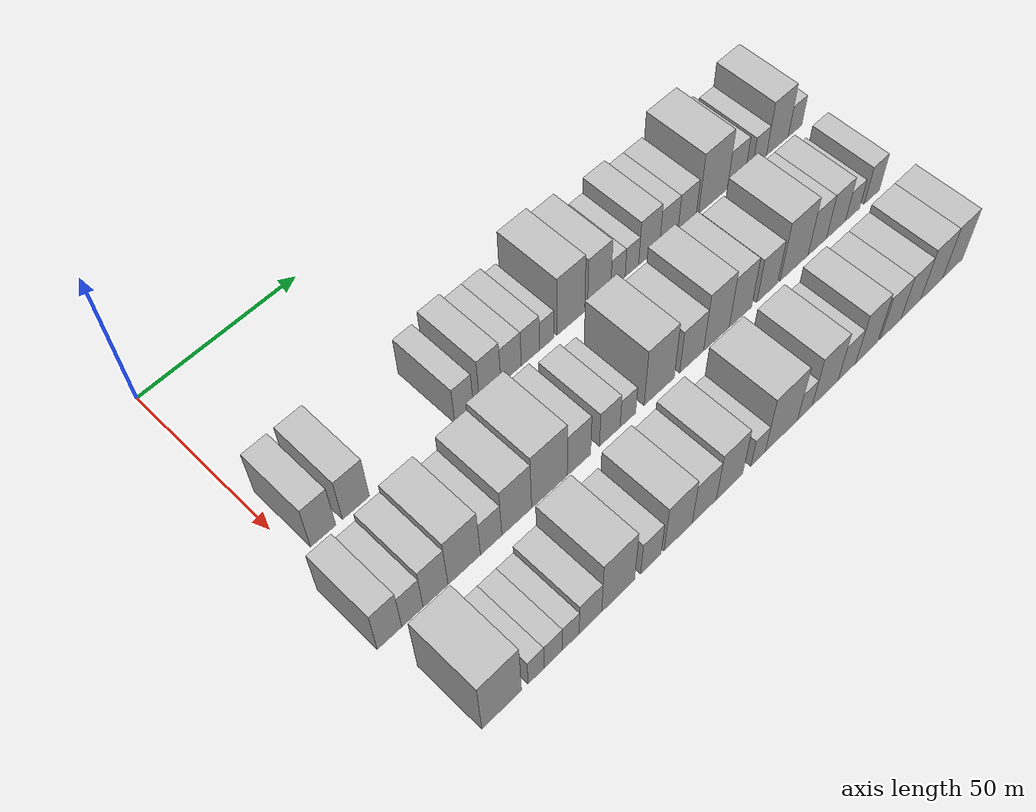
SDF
<sdf version="1.6">
 <world name="default">
  <model name="building_40">
   <static>1</static>
   <pose>50.0000 7.4504 0 0.000000 0.000000 0.000000</pose>
   <link name="link">
    <pose>0 0 9.00 0 0 0</pose>
    <collision name="collision"><geometry><box><size>20.0000 7.5672 18.0000</size></box></geometry></collision>
    <visual name="visual">
     <cast_shadows>0</cast_shadows>
     <geometry><box><size>20.0000 7.5672 18.0000</size></box></geometry>
     <material>
      <script>
       <uri>model://HANNAS_wall/materials/scripts</uri>
       <uri>model://HANNAS_wall/materials/textures</uri>
       <name>vrc/HANNAS_wall</name>
      </script>
     </material>
    </visual>
   </link>
  </model>
  <model name="building_41">
   <static>1</static>
   <pose>50.0000 17.3543 0 0.000000 0.000000 0.000000</pose>
   <link name="link">
    <pose>0 0 9.00 0 0 0</pose>
    <collision name="collision"><geometry><box><size>20.0000 8.2406 18.0000</size></box></geometry></collision>
    <visual name="visual">
     <cast_shadows>0</cast_shadows>
     <geometry><box><size>20.0000 8.2406 18.0000</size></box></geometry>
     <material>
      <script>
       <uri>model://HANNAS_wall/materials/scripts</uri>
       <uri>model://HANNAS_wall/materials/textures</uri>
       <name>vrc/HANNAS_wall</name>
      </script>
     </material>
    </visual>
   </link>
  </model>
  <model name="building_42">
   <static>1</static>
   <pose>50.0000 51.7338 0 0.000000 0.000000 0.000000</pose>
   <link name="link">
    <pose>0 0 7.50 0 0 0</pose>
    <collision name="collision"><geometry><box><size>20.0000 6.1729 15.0000</size></box></geometry></collision>
    <visual name="visual">
     <cast_shadows>0</cast_shadows>
     <geometry><box><size>20.0000 6.1729 15.0000</size></box></geometry>
     <material>
      <script>
       <uri>model://HANNAS_wall/materials/scripts</uri>
       <uri>model://HANNAS_wall/materials/textures</uri>
       <name>vrc/HANNAS_wall</name>
      </script>
     </material>
    </visual>
   </link>
  </model>
  <model name="building_43">
   <static>1</static>
   <pose>50.0000 60.4232 0 0.000000 0.000000 0.000000</pose>
   <link name="link">
    <pose>0 0 9.00 0 0 0</pose>
    <collision name="collision"><geometry><box><size>20.0000 7.2059 18.0000</size></box></geometry></collision>
    <visual name="visual">
     <cast_shadows>0</cast_shadows>
     <geometry><box><size>20.0000 7.2059 18.0000</size></box></geometry>
     <material>
      <script>
       <uri>model://HANNAS_wall/materials/scripts</uri>
       <uri>model://HANNAS_wall/materials/textures</uri>
       <name>vrc/HANNAS_wall</name>
      </script>
     </material>
    </visual>
   </link>
  </model>
  <model name="building_44">
   <static>1</static>
   <pose>50.0000 67.5245 0 0.000000 0.000000 0.000000</pose>
   <link name="link">
    <pose>0 0 7.50 0 0 0</pose>
    <collision name="collision"><geometry><box><size>20.0000 6.9966 15.0000</size></box></geometry></collision>
    <visual name="visual">
     <cast_shadows>0</cast_shadows>
     <geometry><box><size>20.0000 6.9966 15.0000</size></box></geometry>
     <material>
      <script>
       <uri>model://HANNAS_wall/materials/scripts</uri>
       <uri>model://HANNAS_wall/materials/textures</uri>
       <name>vrc/HANNAS_wall</name>
      </script>
     </material>
    </visual>
   </link>
  </model>
  <model name="building_45">
   <static>1</static>
   <pose>50.0000 74.1940 0 0.000000 0.000000 0.000000</pose>
   <link name="link">
    <pose>0 0 7.50 0 0 0</pose>
    <collision name="collision"><geometry><box><size>20.0000 6.3425 15.0000</size></box></geometry></collision>
    <visual name="visual">
     <cast_shadows>0</cast_shadows>
     <geometry><box><size>20.0000 6.3425 15.0000</size></box></geometry>
     <material>
      <script>
       <uri>model://HANNAS_wall/materials/scripts</uri>
       <uri>model://HANNAS_wall/materials/textures</uri>
       <name>vrc/HANNAS_wall</name>
      </script>
     </material>
    </visual>
   </link>
  </model>
  <model name="building_46">
   <static>1</static>
   <pose>50.0000 79.9017 0 0.000000 0.000000 0.000000</pose>
   <link name="link">
    <pose>0 0 6.00 0 0 0</pose>
    <collision name="collision"><geometry><box><size>20.0000 5.0729 12.0000</size></box></geometry></collision>
    <visual name="visual">
     <cast_shadows>0</cast_shadows>
     <geometry><box><size>20.0000 5.0729 12.0000</size></box></geometry>
     <material>
      <script>
       <uri>model://HANNAS_wall/materials/scripts</uri>
       <uri>model://HANNAS_wall/materials/textures</uri>
       <name>vrc/HANNAS_wall</name>
      </script>
     </material>
    </visual>
   </link>
  </model>
  <model name="building_47">
   <static>1</static>
   <pose>50.0000 88.3860 0 0.000000 0.000000 0.000000</pose>
   <link name="link">
    <pose>0 0 12.00 0 0 0</pose>
    <collision name="collision"><geometry><box><size>20.0000 9.8957 24.0000</size></box></geometry></collision>
    <visual name="visual">
     <cast_shadows>0</cast_shadows>
     <geometry><box><size>20.0000 9.8957 24.0000</size></box></geometry>
     <material>
      <script>
       <uri>model://HANNAS_wall/materials/scripts</uri>
       <uri>model://HANNAS_wall/materials/textures</uri>
       <name>vrc/HANNAS_wall</name>
      </script>
     </material>
    </visual>
   </link>
  </model>
  <model name="building_48">
   <static>1</static>
   <pose>50.0000 98.5657 0 0.000000 0.000000 0.000000</pose>
   <link name="link">
    <pose>0 0 10.50 0 0 0</pose>
    <collision name="collision"><geometry><box><size>20.0000 8.4638 21.0000</size></box></geometry></collision>
    <visual name="visual">
     <cast_shadows>0</cast_shadows>
     <geometry><box><size>20.0000 8.4638 21.0000</size></box></geometry>
     <material>
      <script>
       <uri>model://HANNAS_wall/materials/scripts</uri>
       <uri>model://HANNAS_wall/materials/textures</uri>
       <name>vrc/HANNAS_wall</name>
      </script>
     </material>
    </visual>
   </link>
  </model>
  <model name="building_49">
   <static>1</static>
   <pose>50.0000 105.4845 0 0.000000 0.000000 0.000000</pose>
   <link name="link">
    <pose>0 0 6.00 0 0 0</pose>
    <collision name="collision"><geometry><box><size>20.0000 5.3737 12.0000</size></box></geometry></collision>
    <visual name="visual">
     <cast_shadows>0</cast_shadows>
     <geometry><box><size>20.0000 5.3737 12.0000</size></box></geometry>
     <material>
      <script>
       <uri>model://HANNAS_wall/materials/scripts</uri>
       <uri>model://HANNAS_wall/materials/textures</uri>
       <name>vrc/HANNAS_wall</name>
      </script>
     </material>
    </visual>
   </link>
  </model>
  <model name="building_50">
   <static>1</static>
   <pose>50.0000 110.6867 0 0.000000 0.000000 0.000000</pose>
   <link name="link">
    <pose>0 0 6.00 0 0 0</pose>
    <collision name="collision"><geometry><box><size>20.0000 5.0306 12.0000</size></box></geometry></collision>
    <visual name="visual">
     <cast_shadows>0</cast_shadows>
     <geometry><box><size>20.0000 5.0306 12.0000</size></box></geometry>
     <material>
      <script>
       <uri>model://HANNAS_wall/materials/scripts</uri>
       <uri>model://HANNAS_wall/materials/textures</uri>
       <name>vrc/HANNAS_wall</name>
      </script>
     </material>
    </visual>
   </link>
  </model>
  <model name="building_51">
   <static>1</static>
   <pose>50.0000 117.1437 0 0.000000 0.000000 0.000000</pose>
   <link name="link">
    <pose>0 0 9.00 0 0 0</pose>
    <collision name="collision"><geometry><box><size>20.0000 7.8833 18.0000</size></box></geometry></collision>
    <visual name="visual">
     <cast_shadows>0</cast_shadows>
     <geometry><box><size>20.0000 7.8833 18.0000</size></box></geometry>
     <material>
      <script>
       <uri>model://HANNAS_wall/materials/scripts</uri>
       <uri>model://HANNAS_wall/materials/textures</uri>
       <name>vrc/HANNAS_wall</name>
      </script>
     </material>
    </visual>
   </link>
  </model>
  <model name="building_52">
   <static>1</static>
   <pose>50.0000 124.6534 0 0.000000 0.000000 0.000000</pose>
   <link name="link">
    <pose>0 0 7.50 0 0 0</pose>
    <collision name="collision"><geometry><box><size>20.0000 7.1361 15.0000</size></box></geometry></collision>
    <visual name="visual">
     <cast_shadows>0</cast_shadows>
     <geometry><box><size>20.0000 7.1361 15.0000</size></box></geometry>
     <material>
      <script>
       <uri>model://HANNAS_wall/materials/scripts</uri>
       <uri>model://HANNAS_wall/materials/textures</uri>
       <name>vrc/HANNAS_wall</name>
      </script>
     </material>
    </visual>
   </link>
  </model>
  <model name="building_53">
   <static>1</static>
   <pose>50.0000 131.7565 0 0.000000 0.000000 0.000000</pose>
   <link name="link">
    <pose>0 0 7.50 0 0 0</pose>
    <collision name="collision"><geometry><box><size>20.0000 7.0702 15.0000</size></box></geometry></collision>
    <visual name="visual">
     <cast_shadows>0</cast_shadows>
     <geometry><box><size>20.0000 7.0702 15.0000</size></box></geometry>
     <material>
      <script>
       <uri>model://HANNAS_wall/materials/scripts</uri>
       <uri>model://HANNAS_wall/materials/textures</uri>
       <name>vrc/HANNAS_wall</name>
      </script>
     </material>
    </visual>
   </link>
  </model>
  <model name="building_54">
   <static>1</static>
   <pose>50.0000 142.0020 0 0.000000 0.000000 0.000000</pose>
   <link name="link">
    <pose>0 0 12.00 0 0 0</pose>
    <collision name="collision"><geometry><box><size>20.0000 11.4209 24.0000</size></box></geometry></collision>
    <visual name="visual">
     <cast_shadows>0</cast_shadows>
     <geometry><box><size>20.0000 11.4209 24.0000</size></box></geometry>
     <material>
      <script>
       <uri>model://HANNAS_wall/materials/scripts</uri>
       <uri>model://HANNAS_wall/materials/textures</uri>
       <name>vrc/HANNAS_wall</name>
      </script>
     </material>
    </visual>
   </link>
  </model>
  <model name="building_55">
   <static>1</static>
   <pose>50.0000 151.3492 0 0.000000 0.000000 0.000000</pose>
   <link name="link">
    <pose>0 0 7.50 0 0 0</pose>
    <collision name="collision"><geometry><box><size>20.0000 7.2735 15.0000</size></box></geometry></collision>
    <visual name="visual">
     <cast_shadows>0</cast_shadows>
     <geometry><box><size>20.0000 7.2735 15.0000</size></box></geometry>
     <material>
      <script>
       <uri>model://HANNAS_wall/materials/scripts</uri>
       <uri>model://HANNAS_wall/materials/textures</uri>
       <name>vrc/HANNAS_wall</name>
      </script>
     </material>
    </visual>
   </link>
  </model>
  <model name="building_56">
   <static>1</static>
   <pose>50.0000 160.8515 0 0.000000 0.000000 0.000000</pose>
   <link name="link">
    <pose>0 0 6.00 0 0 0</pose>
    <collision name="collision"><geometry><box><size>20.0000 5.7311 12.0000</size></box></geometry></collision>
    <visual name="visual">
     <cast_shadows>0</cast_shadows>
     <geometry><box><size>20.0000 5.7311 12.0000</size></box></geometry>
     <material>
      <script>
       <uri>model://HANNAS_wall/materials/scripts</uri>
       <uri>model://HANNAS_wall/materials/textures</uri>
       <name>vrc/HANNAS_wall</name>
      </script>
     </material>
    </visual>
   </link>
  </model>
  <model name="building_57">
   <static>1</static>
   <pose>50.0000 168.3172 0 0.000000 0.000000 0.000000</pose>
   <link name="link">
    <pose>0 0 10.50 0 0 0</pose>
    <collision name="collision"><geometry><box><size>20.0000 9.2005 21.0000</size></box></geometry></collision>
    <visual name="visual">
     <cast_shadows>0</cast_shadows>
     <geometry><box><size>20.0000 9.2005 21.0000</size></box></geometry>
     <material>
      <script>
       <uri>model://HANNAS_wall/materials/scripts</uri>
       <uri>model://HANNAS_wall/materials/textures</uri>
       <name>vrc/HANNAS_wall</name>
      </script>
     </material>
    </visual>
   </link>
  </model>
  <model name="building_58">
   <static>1</static>
   <pose>50.0000 175.8092 0 0.000000 0.000000 0.000000</pose>
   <link name="link">
    <pose>0 0 6.00 0 0 0</pose>
    <collision name="collision"><geometry><box><size>20.0000 5.7834 12.0000</size></box></geometry></collision>
    <visual name="visual">
     <cast_shadows>0</cast_shadows>
     <geometry><box><size>20.0000 5.7834 12.0000</size></box></geometry>
     <material>
      <script>
       <uri>model://HANNAS_wall/materials/scripts</uri>
       <uri>model://HANNAS_wall/materials/textures</uri>
       <name>vrc/HANNAS_wall</name>
      </script>
     </material>
    </visual>
   </link>
  </model>
  <model name="building_115">
   <static>1</static>
   <pose>79.0000 1.4939 0 0.000000 0.000000 0.000000</pose>
   <link name="link">
    <pose>0 0 9.00 0 0 0</pose>
    <collision name="collision"><geometry><box><size>20.0000 7.2247 18.0000</size></box></geometry></collision>
    <visual name="visual">
     <cast_shadows>0</cast_shadows>
     <geometry><box><size>20.0000 7.2247 18.0000</size></box></geometry>
     <material>
      <script>
       <uri>model://HANNAS_wall/materials/scripts</uri>
       <uri>model://HANNAS_wall/materials/textures</uri>
       <name>vrc/HANNAS_wall</name>
      </script>
     </material>
    </visual>
   </link>
  </model>
  <model name="building_116">
   <static>1</static>
   <pose>79.0000 8.2973 0 0.000000 0.000000 0.000000</pose>
   <link name="link">
    <pose>0 0 7.50 0 0 0</pose>
    <collision name="collision"><geometry><box><size>20.0000 6.3820 15.0000</size></box></geometry></collision>
    <visual name="visual">
     <cast_shadows>0</cast_shadows>
     <geometry><box><size>20.0000 6.3820 15.0000</size></box></geometry>
     <material>
      <script>
       <uri>model://HANNAS_wall/materials/scripts</uri>
       <uri>model://HANNAS_wall/materials/textures</uri>
       <name>vrc/HANNAS_wall</name>
      </script>
     </material>
    </visual>
   </link>
  </model>
  <model name="building_117">
   <static>1</static>
   <pose>79.0000 15.2672 0 0.000000 0.000000 0.000000</pose>
   <link name="link">
    <pose>0 0 9.00 0 0 0</pose>
    <collision name="collision"><geometry><box><size>20.0000 7.5578 18.0000</size></box></geometry></collision>
    <visual name="visual">
     <cast_shadows>0</cast_shadows>
     <geometry><box><size>20.0000 7.5578 18.0000</size></box></geometry>
     <material>
      <script>
       <uri>model://HANNAS_wall/materials/scripts</uri>
       <uri>model://HANNAS_wall/materials/textures</uri>
       <name>vrc/HANNAS_wall</name>
      </script>
     </material>
    </visual>
   </link>
  </model>
  <model name="building_118">
   <static>1</static>
   <pose>79.0000 24.0853 0 0.000000 0.000000 0.000000</pose>
   <link name="link">
    <pose>0 0 10.50 0 0 0</pose>
    <collision name="collision"><geometry><box><size>20.0000 10.0784 21.0000</size></box></geometry></collision>
    <visual name="visual">
     <cast_shadows>0</cast_shadows>
     <geometry><box><size>20.0000 10.0784 21.0000</size></box></geometry>
     <material>
      <script>
       <uri>model://HANNAS_wall/materials/scripts</uri>
       <uri>model://HANNAS_wall/materials/textures</uri>
       <name>vrc/HANNAS_wall</name>
      </script>
     </material>
    </visual>
   </link>
  </model>
  <model name="building_119">
   <static>1</static>
   <pose>79.0000 32.4928 0 0.000000 0.000000 0.000000</pose>
   <link name="link">
    <pose>0 0 7.50 0 0 0</pose>
    <collision name="collision"><geometry><box><size>20.0000 6.7366 15.0000</size></box></geometry></collision>
    <visual name="visual">
     <cast_shadows>0</cast_shadows>
     <geometry><box><size>20.0000 6.7366 15.0000</size></box></geometry>
     <material>
      <script>
       <uri>model://HANNAS_wall/materials/scripts</uri>
       <uri>model://HANNAS_wall/materials/textures</uri>
       <name>vrc/HANNAS_wall</name>
      </script>
     </material>
    </visual>
   </link>
  </model>
  <model name="building_120">
   <static>1</static>
   <pose>79.0000 40.6600 0 0.000000 0.000000 0.000000</pose>
   <link name="link">
    <pose>0 0 10.50 0 0 0</pose>
    <collision name="collision"><geometry><box><size>20.0000 9.5979 21.0000</size></box></geometry></collision>
    <visual name="visual">
     <cast_shadows>0</cast_shadows>
     <geometry><box><size>20.0000 9.5979 21.0000</size></box></geometry>
     <material>
      <script>
       <uri>model://HANNAS_wall/materials/scripts</uri>
       <uri>model://HANNAS_wall/materials/textures</uri>
       <name>vrc/HANNAS_wall</name>
      </script>
     </material>
    </visual>
   </link>
  </model>
  <model name="building_121">
   <static>1</static>
   <pose>79.0000 51.3316 0 0.000000 0.000000 0.000000</pose>
   <link name="link">
    <pose>0 0 12.00 0 0 0</pose>
    <collision name="collision"><geometry><box><size>20.0000 11.7453 24.0000</size></box></geometry></collision>
    <visual name="visual">
     <cast_shadows>0</cast_shadows>
     <geometry><box><size>20.0000 11.7453 24.0000</size></box></geometry>
     <material>
      <script>
       <uri>model://HANNAS_wall/materials/scripts</uri>
       <uri>model://HANNAS_wall/materials/textures</uri>
       <name>vrc/HANNAS_wall</name>
      </script>
     </material>
    </visual>
   </link>
  </model>
  <model name="building_122">
   <static>1</static>
   <pose>79.0000 61.1609 0 0.000000 0.000000 0.000000</pose>
   <link name="link">
    <pose>0 0 9.00 0 0 0</pose>
    <collision name="collision"><geometry><box><size>20.0000 7.9132 18.0000</size></box></geometry></collision>
    <visual name="visual">
     <cast_shadows>0</cast_shadows>
     <geometry><box><size>20.0000 7.9132 18.0000</size></box></geometry>
     <material>
      <script>
       <uri>model://HANNAS_wall/materials/scripts</uri>
       <uri>model://HANNAS_wall/materials/textures</uri>
       <name>vrc/HANNAS_wall</name>
      </script>
     </material>
    </visual>
   </link>
  </model>
  <model name="building_123">
   <static>1</static>
   <pose>79.0000 71.6777 0 0.000000 0.000000 0.000000</pose>
   <link name="link">
    <pose>0 0 7.50 0 0 0</pose>
    <collision name="collision"><geometry><box><size>20.0000 7.1204 15.0000</size></box></geometry></collision>
    <visual name="visual">
     <cast_shadows>0</cast_shadows>
     <geometry><box><size>20.0000 7.1204 15.0000</size></box></geometry>
     <material>
      <script>
       <uri>model://HANNAS_wall/materials/scripts</uri>
       <uri>model://HANNAS_wall/materials/textures</uri>
       <name>vrc/HANNAS_wall</name>
      </script>
     </material>
    </visual>
   </link>
  </model>
  <model name="building_124">
   <static>1</static>
   <pose>79.0000 77.9677 0 0.000000 0.000000 0.000000</pose>
   <link name="link">
    <pose>0 0 6.00 0 0 0</pose>
    <collision name="collision"><geometry><box><size>20.0000 5.4597 12.0000</size></box></geometry></collision>
    <visual name="visual">
     <cast_shadows>0</cast_shadows>
     <geometry><box><size>20.0000 5.4597 12.0000</size></box></geometry>
     <material>
      <script>
       <uri>model://HANNAS_wall/materials/scripts</uri>
       <uri>model://HANNAS_wall/materials/textures</uri>
       <name>vrc/HANNAS_wall</name>
      </script>
     </material>
    </visual>
   </link>
  </model>
  <model name="building_125">
   <static>1</static>
   <pose>79.0000 89.0785 0 0.000000 0.000000 0.000000</pose>
   <link name="link">
    <pose>0 0 12.00 0 0 0</pose>
    <collision name="collision"><geometry><box><size>20.0000 10.7621 24.0000</size></box></geometry></collision>
    <visual name="visual">
     <cast_shadows>0</cast_shadows>
     <geometry><box><size>20.0000 10.7621 24.0000</size></box></geometry>
     <material>
      <script>
       <uri>model://HANNAS_wall/materials/scripts</uri>
       <uri>model://HANNAS_wall/materials/textures</uri>
       <name>vrc/HANNAS_wall</name>
      </script>
     </material>
    </visual>
   </link>
  </model>
  <model name="building_126">
   <static>1</static>
   <pose>79.0000 100.8527 0 0.000000 0.000000 0.000000</pose>
   <link name="link">
    <pose>0 0 9.00 0 0 0</pose>
    <collision name="collision"><geometry><box><size>20.0000 8.7864 18.0000</size></box></geometry></collision>
    <visual name="visual">
     <cast_shadows>0</cast_shadows>
     <geometry><box><size>20.0000 8.7864 18.0000</size></box></geometry>
     <material>
      <script>
       <uri>model://HANNAS_wall/materials/scripts</uri>
       <uri>model://HANNAS_wall/materials/textures</uri>
       <name>vrc/HANNAS_wall</name>
      </script>
     </material>
    </visual>
   </link>
  </model>
  <model name="building_127">
   <static>1</static>
   <pose>79.0000 110.0501 0 0.000000 0.000000 0.000000</pose>
   <link name="link">
    <pose>0 0 12.00 0 0 0</pose>
    <collision name="collision"><geometry><box><size>20.0000 9.6083 24.0000</size></box></geometry></collision>
    <visual name="visual">
     <cast_shadows>0</cast_shadows>
     <geometry><box><size>20.0000 9.6083 24.0000</size></box></geometry>
     <material>
      <script>
       <uri>model://HANNAS_wall/materials/scripts</uri>
       <uri>model://HANNAS_wall/materials/textures</uri>
       <name>vrc/HANNAS_wall</name>
      </script>
     </material>
    </visual>
   </link>
  </model>
  <model name="building_128">
   <static>1</static>
   <pose>79.0000 119.1418 0 0.000000 0.000000 0.000000</pose>
   <link name="link">
    <pose>0 0 10.50 0 0 0</pose>
    <collision name="collision"><geometry><box><size>20.0000 8.5752 21.0000</size></box></geometry></collision>
    <visual name="visual">
     <cast_shadows>0</cast_shadows>
     <geometry><box><size>20.0000 8.5752 21.0000</size></box></geometry>
     <material>
      <script>
       <uri>model://HANNAS_wall/materials/scripts</uri>
       <uri>model://HANNAS_wall/materials/textures</uri>
       <name>vrc/HANNAS_wall</name>
      </script>
     </material>
    </visual>
   </link>
  </model>
  <model name="building_129">
   <static>1</static>
   <pose>79.0000 129.4755 0 0.000000 0.000000 0.000000</pose>
   <link name="link">
    <pose>0 0 9.00 0 0 0</pose>
    <collision name="collision"><geometry><box><size>20.0000 8.0923 18.0000</size></box></geometry></collision>
    <visual name="visual">
     <cast_shadows>0</cast_shadows>
     <geometry><box><size>20.0000 8.0923 18.0000</size></box></geometry>
     <material>
      <script>
       <uri>model://HANNAS_wall/materials/scripts</uri>
       <uri>model://HANNAS_wall/materials/textures</uri>
       <name>vrc/HANNAS_wall</name>
      </script>
     </material>
    </visual>
   </link>
  </model>
  <model name="building_130">
   <static>1</static>
   <pose>79.0000 140.1061 0 0.000000 0.000000 0.000000</pose>
   <link name="link">
    <pose>0 0 12.00 0 0 0</pose>
    <collision name="collision"><geometry><box><size>20.0000 11.1688 24.0000</size></box></geometry></collision>
    <visual name="visual">
     <cast_shadows>0</cast_shadows>
     <geometry><box><size>20.0000 11.1688 24.0000</size></box></geometry>
     <material>
      <script>
       <uri>model://HANNAS_wall/materials/scripts</uri>
       <uri>model://HANNAS_wall/materials/textures</uri>
       <name>vrc/HANNAS_wall</name>
      </script>
     </material>
    </visual>
   </link>
  </model>
  <model name="building_131">
   <static>1</static>
   <pose>79.0000 149.4155 0 0.000000 0.000000 0.000000</pose>
   <link name="link">
    <pose>0 0 9.00 0 0 0</pose>
    <collision name="collision"><geometry><box><size>20.0000 7.4500 18.0000</size></box></geometry></collision>
    <visual name="visual">
     <cast_shadows>0</cast_shadows>
     <geometry><box><size>20.0000 7.4500 18.0000</size></box></geometry>
     <material>
      <script>
       <uri>model://HANNAS_wall/materials/scripts</uri>
       <uri>model://HANNAS_wall/materials/textures</uri>
       <name>vrc/HANNAS_wall</name>
      </script>
     </material>
    </visual>
   </link>
  </model>
  <model name="building_132">
   <static>1</static>
   <pose>79.0000 157.1162 0 0.000000 0.000000 0.000000</pose>
   <link name="link">
    <pose>0 0 9.00 0 0 0</pose>
    <collision name="collision"><geometry><box><size>20.0000 7.9513 18.0000</size></box></geometry></collision>
    <visual name="visual">
     <cast_shadows>0</cast_shadows>
     <geometry><box><size>20.0000 7.9513 18.0000</size></box></geometry>
     <material>
      <script>
       <uri>model://HANNAS_wall/materials/scripts</uri>
       <uri>model://HANNAS_wall/materials/textures</uri>
       <name>vrc/HANNAS_wall</name>
      </script>
     </material>
    </visual>
   </link>
  </model>
  <model name="building_133">
   <static>1</static>
   <pose>79.0000 164.0269 0 0.000000 0.000000 0.000000</pose>
   <link name="link">
    <pose>0 0 6.00 0 0 0</pose>
    <collision name="collision"><geometry><box><size>20.0000 5.8700 12.0000</size></box></geometry></collision>
    <visual name="visual">
     <cast_shadows>0</cast_shadows>
     <geometry><box><size>20.0000 5.8700 12.0000</size></box></geometry>
     <material>
      <script>
       <uri>model://HANNAS_wall/materials/scripts</uri>
       <uri>model://HANNAS_wall/materials/textures</uri>
       <name>vrc/HANNAS_wall</name>
      </script>
     </material>
    </visual>
   </link>
  </model>
  <model name="building_134">
   <static>1</static>
   <pose>79.0000 172.1776 0 0.000000 0.000000 0.000000</pose>
   <link name="link">
    <pose>0 0 7.50 0 0 0</pose>
    <collision name="collision"><geometry><box><size>20.0000 6.4314 15.0000</size></box></geometry></collision>
    <visual name="visual">
     <cast_shadows>0</cast_shadows>
     <geometry><box><size>20.0000 6.4314 15.0000</size></box></geometry>
     <material>
      <script>
       <uri>model://HANNAS_wall/materials/scripts</uri>
       <uri>model://HANNAS_wall/materials/textures</uri>
       <name>vrc/HANNAS_wall</name>
      </script>
     </material>
    </visual>
   </link>
  </model>
  <model name="building_195">
   <static>1</static>
   <pose>108.0000 7.3734 0 0.000000 0.000000 0.000000</pose>
   <link name="link">
    <pose>0 0 12.00 0 0 0</pose>
    <collision name="collision"><geometry><box><size>20.0000 11.8275 24.0000</size></box></geometry></collision>
    <visual name="visual">
     <cast_shadows>0</cast_shadows>
     <geometry><box><size>20.0000 11.8275 24.0000</size></box></geometry>
     <material>
      <script>
       <uri>model://HANNAS_wall/materials/scripts</uri>
       <uri>model://HANNAS_wall/materials/textures</uri>
       <name>vrc/HANNAS_wall</name>
      </script>
     </material>
    </visual>
   </link>
  </model>
  <model name="building_196">
   <static>1</static>
   <pose>108.0000 17.7530 0 0.000000 0.000000 0.000000</pose>
   <link name="link">
    <pose>0 0 6.00 0 0 0</pose>
    <collision name="collision"><geometry><box><size>20.0000 4.9316 12.0000</size></box></geometry></collision>
    <visual name="visual">
     <cast_shadows>0</cast_shadows>
     <geometry><box><size>20.0000 4.9316 12.0000</size></box></geometry>
     <material>
      <script>
       <uri>model://HANNAS_wall/materials/scripts</uri>
       <uri>model://HANNAS_wall/materials/textures</uri>
       <name>vrc/HANNAS_wall</name>
      </script>
     </material>
    </visual>
   </link>
  </model>
  <model name="building_197">
   <static>1</static>
   <pose>108.0000 23.0538 0 0.000000 0.000000 0.000000</pose>
   <link name="link">
    <pose>0 0 6.00 0 0 0</pose>
    <collision name="collision"><geometry><box><size>20.0000 5.6701 12.0000</size></box></geometry></collision>
    <visual name="visual">
     <cast_shadows>0</cast_shadows>
     <geometry><box><size>20.0000 5.6701 12.0000</size></box></geometry>
     <material>
      <script>
       <uri>model://HANNAS_wall/materials/scripts</uri>
       <uri>model://HANNAS_wall/materials/textures</uri>
       <name>vrc/HANNAS_wall</name>
      </script>
     </material>
    </visual>
   </link>
  </model>
  <model name="building_198">
   <static>1</static>
   <pose>108.0000 28.4826 0 0.000000 0.000000 0.000000</pose>
   <link name="link">
    <pose>0 0 6.00 0 0 0</pose>
    <collision name="collision"><geometry><box><size>20.0000 5.1874 12.0000</size></box></geometry></collision>
    <visual name="visual">
     <cast_shadows>0</cast_shadows>
     <geometry><box><size>20.0000 5.1874 12.0000</size></box></geometry>
     <material>
      <script>
       <uri>model://HANNAS_wall/materials/scripts</uri>
       <uri>model://HANNAS_wall/materials/textures</uri>
       <name>vrc/HANNAS_wall</name>
      </script>
     </material>
    </visual>
   </link>
  </model>
  <model name="building_199">
   <static>1</static>
   <pose>108.0000 34.6483 0 0.000000 0.000000 0.000000</pose>
   <link name="link">
    <pose>0 0 7.50 0 0 0</pose>
    <collision name="collision"><geometry><box><size>20.0000 7.1440 15.0000</size></box></geometry></collision>
    <visual name="visual">
     <cast_shadows>0</cast_shadows>
     <geometry><box><size>20.0000 7.1440 15.0000</size></box></geometry>
     <material>
      <script>
       <uri>model://HANNAS_wall/materials/scripts</uri>
       <uri>model://HANNAS_wall/materials/textures</uri>
       <name>vrc/HANNAS_wall</name>
      </script>
     </material>
    </visual>
   </link>
  </model>
  <model name="building_200">
   <static>1</static>
   <pose>108.0000 43.5733 0 0.000000 0.000000 0.000000</pose>
   <link name="link">
    <pose>0 0 12.00 0 0 0</pose>
    <collision name="collision"><geometry><box><size>20.0000 10.7059 24.0000</size></box></geometry></collision>
    <visual name="visual">
     <cast_shadows>0</cast_shadows>
     <geometry><box><size>20.0000 10.7059 24.0000</size></box></geometry>
     <material>
      <script>
       <uri>model://HANNAS_wall/materials/scripts</uri>
       <uri>model://HANNAS_wall/materials/textures</uri>
       <name>vrc/HANNAS_wall</name>
      </script>
     </material>
    </visual>
   </link>
  </model>
  <model name="building_201">
   <static>1</static>
   <pose>108.0000 54.3320 0 0.000000 0.000000 0.000000</pose>
   <link name="link">
    <pose>0 0 7.50 0 0 0</pose>
    <collision name="collision"><geometry><box><size>20.0000 6.8115 15.0000</size></box></geometry></collision>
    <visual name="visual">
     <cast_shadows>0</cast_shadows>
     <geometry><box><size>20.0000 6.8115 15.0000</size></box></geometry>
     <material>
      <script>
       <uri>model://HANNAS_wall/materials/scripts</uri>
       <uri>model://HANNAS_wall/materials/textures</uri>
       <name>vrc/HANNAS_wall</name>
      </script>
     </material>
    </visual>
   </link>
  </model>
  <model name="building_202">
   <static>1</static>
   <pose>108.0000 63.5224 0 0.000000 0.000000 0.000000</pose>
   <link name="link">
    <pose>0 0 10.50 0 0 0</pose>
    <collision name="collision"><geometry><box><size>20.0000 9.5694 21.0000</size></box></geometry></collision>
    <visual name="visual">
     <cast_shadows>0</cast_shadows>
     <geometry><box><size>20.0000 9.5694 21.0000</size></box></geometry>
     <material>
      <script>
       <uri>model://HANNAS_wall/materials/scripts</uri>
       <uri>model://HANNAS_wall/materials/textures</uri>
       <name>vrc/HANNAS_wall</name>
      </script>
     </material>
    </visual>
   </link>
  </model>
  <model name="building_203">
   <static>1</static>
   <pose>108.0000 72.4843 0 0.000000 0.000000 0.000000</pose>
   <link name="link">
    <pose>0 0 9.00 0 0 0</pose>
    <collision name="collision"><geometry><box><size>20.0000 8.3544 18.0000</size></box></geometry></collision>
    <visual name="visual">
     <cast_shadows>0</cast_shadows>
     <geometry><box><size>20.0000 8.3544 18.0000</size></box></geometry>
     <material>
      <script>
       <uri>model://HANNAS_wall/materials/scripts</uri>
       <uri>model://HANNAS_wall/materials/textures</uri>
       <name>vrc/HANNAS_wall</name>
      </script>
     </material>
    </visual>
   </link>
  </model>
  <model name="building_204">
   <static>1</static>
   <pose>108.0000 81.3296 0 0.000000 0.000000 0.000000</pose>
   <link name="link">
    <pose>0 0 10.50 0 0 0</pose>
    <collision name="collision"><geometry><box><size>20.0000 9.3361 21.0000</size></box></geometry></collision>
    <visual name="visual">
     <cast_shadows>0</cast_shadows>
     <geometry><box><size>20.0000 9.3361 21.0000</size></box></geometry>
     <material>
      <script>
       <uri>model://HANNAS_wall/materials/scripts</uri>
       <uri>model://HANNAS_wall/materials/textures</uri>
       <name>vrc/HANNAS_wall</name>
      </script>
     </material>
    </visual>
   </link>
  </model>
  <model name="building_205">
   <static>1</static>
   <pose>108.0000 91.5763 0 0.000000 0.000000 0.000000</pose>
   <link name="link">
    <pose>0 0 6.00 0 0 0</pose>
    <collision name="collision"><geometry><box><size>20.0000 5.1573 12.0000</size></box></geometry></collision>
    <visual name="visual">
     <cast_shadows>0</cast_shadows>
     <geometry><box><size>20.0000 5.1573 12.0000</size></box></geometry>
     <material>
      <script>
       <uri>model://HANNAS_wall/materials/scripts</uri>
       <uri>model://HANNAS_wall/materials/textures</uri>
       <name>vrc/HANNAS_wall</name>
      </script>
     </material>
    </visual>
   </link>
  </model>
  <model name="building_206">
   <static>1</static>
   <pose>108.0000 100.1157 0 0.000000 0.000000 0.000000</pose>
   <link name="link">
    <pose>0 0 12.00 0 0 0</pose>
    <collision name="collision"><geometry><box><size>20.0000 11.9216 24.0000</size></box></geometry></collision>
    <visual name="visual">
     <cast_shadows>0</cast_shadows>
     <geometry><box><size>20.0000 11.9216 24.0000</size></box></geometry>
     <material>
      <script>
       <uri>model://HANNAS_wall/materials/scripts</uri>
       <uri>model://HANNAS_wall/materials/textures</uri>
       <name>vrc/HANNAS_wall</name>
      </script>
     </material>
    </visual>
   </link>
  </model>
  <model name="building_207">
   <static>1</static>
   <pose>108.0000 108.8266 0 0.000000 0.000000 0.000000</pose>
   <link name="link">
    <pose>0 0 6.00 0 0 0</pose>
    <collision name="collision"><geometry><box><size>20.0000 5.5002 12.0000</size></box></geometry></collision>
    <visual name="visual">
     <cast_shadows>0</cast_shadows>
     <geometry><box><size>20.0000 5.5002 12.0000</size></box></geometry>
     <material>
      <script>
       <uri>model://HANNAS_wall/materials/scripts</uri>
       <uri>model://HANNAS_wall/materials/textures</uri>
       <name>vrc/HANNAS_wall</name>
      </script>
     </material>
    </visual>
   </link>
  </model>
  <model name="building_208">
   <static>1</static>
   <pose>108.0000 116.5255 0 0.000000 0.000000 0.000000</pose>
   <link name="link">
    <pose>0 0 10.50 0 0 0</pose>
    <collision name="collision"><geometry><box><size>20.0000 9.8977 21.0000</size></box></geometry></collision>
    <visual name="visual">
     <cast_shadows>0</cast_shadows>
     <geometry><box><size>20.0000 9.8977 21.0000</size></box></geometry>
     <material>
      <script>
       <uri>model://HANNAS_wall/materials/scripts</uri>
       <uri>model://HANNAS_wall/materials/textures</uri>
       <name>vrc/HANNAS_wall</name>
      </script>
     </material>
    </visual>
   </link>
  </model>
  <model name="building_209">
   <static>1</static>
   <pose>108.0000 124.9176 0 0.000000 0.000000 0.000000</pose>
   <link name="link">
    <pose>0 0 7.50 0 0 0</pose>
    <collision name="collision"><geometry><box><size>20.0000 6.8864 15.0000</size></box></geometry></collision>
    <visual name="visual">
     <cast_shadows>0</cast_shadows>
     <geometry><box><size>20.0000 6.8864 15.0000</size></box></geometry>
     <material>
      <script>
       <uri>model://HANNAS_wall/materials/scripts</uri>
       <uri>model://HANNAS_wall/materials/textures</uri>
       <name>vrc/HANNAS_wall</name>
      </script>
     </material>
    </visual>
   </link>
  </model>
  <model name="building_210">
   <static>1</static>
   <pose>108.0000 132.7227 0 0.000000 0.000000 0.000000</pose>
   <link name="link">
    <pose>0 0 10.50 0 0 0</pose>
    <collision name="collision"><geometry><box><size>20.0000 8.7239 21.0000</size></box></geometry></collision>
    <visual name="visual">
     <cast_shadows>0</cast_shadows>
     <geometry><box><size>20.0000 8.7239 21.0000</size></box></geometry>
     <material>
      <script>
       <uri>model://HANNAS_wall/materials/scripts</uri>
       <uri>model://HANNAS_wall/materials/textures</uri>
       <name>vrc/HANNAS_wall</name>
      </script>
     </material>
    </visual>
   </link>
  </model>
  <model name="building_211">
   <static>1</static>
   <pose>108.0000 142.3273 0 0.000000 0.000000 0.000000</pose>
   <link name="link">
    <pose>0 0 9.00 0 0 0</pose>
    <collision name="collision"><geometry><box><size>20.0000 8.4853 18.0000</size></box></geometry></collision>
    <visual name="visual">
     <cast_shadows>0</cast_shadows>
     <geometry><box><size>20.0000 8.4853 18.0000</size></box></geometry>
     <material>
      <script>
       <uri>model://HANNAS_wall/materials/scripts</uri>
       <uri>model://HANNAS_wall/materials/textures</uri>
       <name>vrc/HANNAS_wall</name>
      </script>
     </material>
    </visual>
   </link>
  </model>
  <model name="building_212">
   <static>1</static>
   <pose>108.0000 150.6124 0 0.000000 0.000000 0.000000</pose>
   <link name="link">
    <pose>0 0 9.00 0 0 0</pose>
    <collision name="collision"><geometry><box><size>20.0000 8.0848 18.0000</size></box></geometry></collision>
    <visual name="visual">
     <cast_shadows>0</cast_shadows>
     <geometry><box><size>20.0000 8.0848 18.0000</size></box></geometry>
     <material>
      <script>
       <uri>model://HANNAS_wall/materials/scripts</uri>
       <uri>model://HANNAS_wall/materials/textures</uri>
       <name>vrc/HANNAS_wall</name>
      </script>
     </material>
    </visual>
   </link>
  </model>
  <model name="building_213">
   <static>1</static>
   <pose>108.0000 159.3099 0 0.000000 0.000000 0.000000</pose>
   <link name="link">
    <pose>0 0 10.50 0 0 0</pose>
    <collision name="collision"><geometry><box><size>20.0000 9.3103 21.0000</size></box></geometry></collision>
    <visual name="visual">
     <cast_shadows>0</cast_shadows>
     <geometry><box><size>20.0000 9.3103 21.0000</size></box></geometry>
     <material>
      <script>
       <uri>model://HANNAS_wall/materials/scripts</uri>
       <uri>model://HANNAS_wall/materials/textures</uri>
       <name>vrc/HANNAS_wall</name>
      </script>
     </material>
    </visual>
   </link>
  </model>
  <model name="building_214">
   <static>1</static>
   <pose>108.0000 168.1975 0 0.000000 0.000000 0.000000</pose>
   <link name="link">
    <pose>0 0 10.50 0 0 0</pose>
    <collision name="collision"><geometry><box><size>20.0000 8.4649 21.0000</size></box></geometry></collision>
    <visual name="visual">
     <cast_shadows>0</cast_shadows>
     <geometry><box><size>20.0000 8.4649 21.0000</size></box></geometry>
     <material>
      <script>
       <uri>model://HANNAS_wall/materials/scripts</uri>
       <uri>model://HANNAS_wall/materials/textures</uri>
       <name>vrc/HANNAS_wall</name>
      </script>
     </material>
    </visual>
   </link>
  </model>
 </world>
</sdf>
